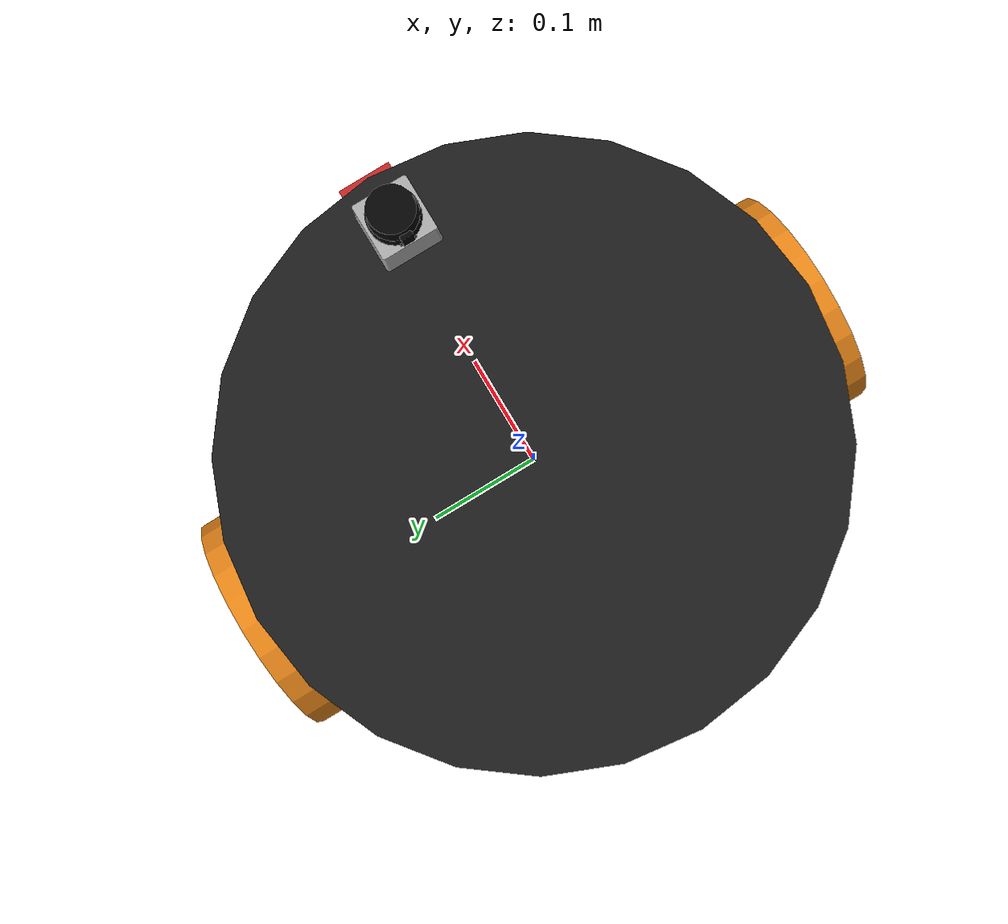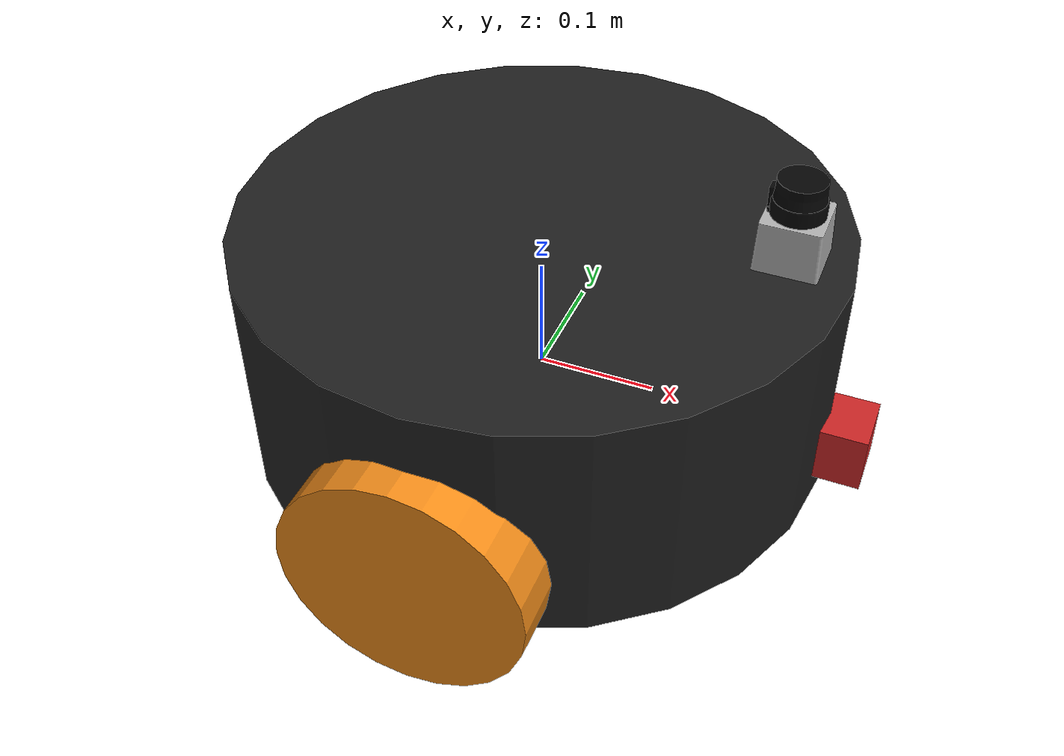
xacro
<?xml version='1.0'?>
<!-- Robot Definition -->
<robot name="midge" xmlns:xacro="http://www.ros.org/wiki/xacro">

  <!-- Including Gazebo -->
  <xacro:include filename="$(find midge)/urdf/midge.gazebo" />

  <!-- Coloring all the parts -->
  <gazebo reference='left_wheel'>
    <material>Gazebo/Orange</material>
  </gazebo>
  <gazebo reference='right_wheel'>
    <material>Gazebo/Orange</material>
  </gazebo>
  <gazebo reference='camera'>
    <material>Gazebo/Red</material>
  </gazebo>

  <gazebo reference='chassis'>
    <material>Gazebo/Black</material>
  </gazebo>

  <!-- Joint wheels and sensors -->
  <joint type="continuous" name="left_wheel_hinge">
    <origin xyz="0 0.25 0" rpy="0 0 0" />
    <parent link="chassis"/>
    <child link="left_wheel" />
    <axis xyz="0 1 0" rpy="0 0 0" />
    <limit effort="10000" velocity="1000" />
    <dynamics damping="1.0" friction="1.0" />
  </joint>
  <joint type="continuous" name="right_wheel_hinge">
    <origin xyz="0 -0.25 0" rpy="0 0 0" />
    <parent link="chassis"/>
    <child link="right_wheel" />
    <axis xyz="0 1 0" rpy="0 0 0" />
    <limit effort="10000" velocity="1000" />
    <dynamics damping="1.0" friction="1.0" />
  </joint>

  <joint name="camera_joint" type="fixed">
    <origin xyz="0.26 0 0" rpy="0 0 0" />
    <parent link="chassis"/>
    <child link="camera" />
    <axis xyz="0 1 0"/>
  </joint>

  <joint name="hokuyo_joint" type="fixed">
    <origin xyz="0.2 0 0.2" rpy="0 0 0" />
    <parent link="chassis"/>
    <child link="hokuyo" />
    <axis xyz="0 1 0"/>
  </joint>

  <joint name="robot_footprint_joint" type="fixed">
    <origin xyz="0 0 0" rpy="0 0 0" />
    <parent link="robot_footprint"/>
    <child link="chassis" />
  </joint>

  <!-- Chassis and sensor Definition -->
  <link name='chassis'>
    <pose>0 0 0.1 0 0 0</pose>

    <inertial>
      <mass value="15.0"/>
      <origin xyz="0.0 0 0" rpy=" 0 0 0"/>
      <inertia
          ixx="0.1" ixy="0" ixz="0"
          iyy="0.1" iyz="0"
          izz="0.1"
      />
    </inertial>

    <collision name='collision'>
      <origin xyz="0 0 0.05" rpy=" 0 0 0"/>
      <geometry>
        <cylinder length="0.2" radius="0.25"/>
      </geometry>
    </collision>

    <visual name='chassis_visual'>
      <origin xyz="0 0 0.05" rpy=" 0 0 0"/>
      <geometry>
       <cylinder length="0.2" radius="0.25"/>
      </geometry>
    </visual>

    <collision name='back_caster_collision'>
      <origin xyz="-0.15 0 -0.05" rpy=" 0 0 0"/>
      <geometry>
        <sphere radius="0.0499"/>
      </geometry>
    </collision>

    <visual name='back_caster_visual'>
      <origin xyz="-0.15 0 -0.05" rpy=" 0 0 0"/>
      <geometry>
        <sphere radius="0.05"/>
      </geometry>
    </visual>

    <collision name='front_caster_collision'>
      <origin xyz="0.15 0 -0.05" rpy=" 0 0 0"/>
      <geometry>
        <sphere radius="0.0499"/>
      </geometry>
    </collision>

    <visual name='front_caster_visual'>
      <origin xyz="0.15 0 -0.05" rpy=" 0 0 0"/>
      <geometry>
        <sphere radius="0.05"/>
      </geometry>
    </visual>

  </link>

  <link name="left_wheel">
    <inertial>
      <mass value="5"/>
      <origin xyz="0 0 0" rpy="0 1.5707 1.5707"/>
      <inertia
        ixx="0.1" ixy="0.0" ixz="0.0"
        iyy="0.1" iyz="0.0"
        izz="0.1"
      />
    </inertial>

    <collision>
      <origin xyz="0 0 0" rpy="0 1.5707 1.5707"/>
      <geometry>
        <cylinder radius="0.1" length="0.05"/>
      </geometry>
    </collision>

    <visual>
      <origin xyz="0 0 0" rpy="0 1.5707 1.5707"/>
      <geometry>
        <cylinder radius="0.1" length="0.05"/>
      </geometry>
    </visual>

  </link>
  <link name="right_wheel">
    <inertial>
      <mass value="5"/>
      <origin xyz="0 0 0" rpy="0 1.5707 1.5707"/>
      <inertia
        ixx="0.1" ixy="0.0" ixz="0.0"
        iyy="0.1" iyz="0.0"
        izz="0.1"
      />
    </inertial>

    <collision>
      <origin xyz="0 0 0" rpy="0 1.5707 1.5707"/>
      <geometry>
        <cylinder radius="0.1" length="0.05"/>
      </geometry>
    </collision>

    <visual>
      <origin xyz="0 0 0" rpy="0 1.5707 1.5707"/>
      <geometry>
        <cylinder radius="0.1" length="0.05"/>
      </geometry>
    </visual>

  </link>

  <link name="camera">
    <inertial>
      <mass value="0.1"/>
      <origin xyz="0 0 0" rpy="0 0 0"/>
      <inertia
        ixx="1e-6" ixy="0.0" ixz="0.0"
        iyy="1e-6" iyz="0.0"
        izz="1e-6"
      />
    </inertial>

    <collision>
      <origin xyz="0 0 0" rpy="0 0 0"/>
      <geometry>
        <box size="0.05 0.05 0.05"/>
      </geometry>
    </collision>

    <visual>
      <origin xyz="0 0 0" rpy="0 0 0"/>
      <geometry>
        <box size="0.05 0.05 0.05"/>
      </geometry>
    </visual>
  </link>
  <link name="hokuyo">
      <inertial>
        <mass value="1e-5"/>
        <origin xyz="0 0 0" rpy="0 0 0"/>
        <inertia
          ixx="1e-6" ixy="0.0" ixz="0.0"
          iyy="1e-6" iyz="0.0"
          izz="1e-6"
        />
      </inertial>

      <collision>
        <origin xyz="0 0 0" rpy="0 0 0"/>
        <geometry>
          <box size="0.1 0.1 0.1"/>
        </geometry>
      </collision>

      <visual>
        <origin xyz="0 0 0" rpy="0 0 0"/>
        <geometry>
          <mesh filename="package://midge/meshes/hokuyo.dae"/>
        </geometry>
      </visual>

    </link>
  <link name="robot_footprint">
  </link>

</robot>
